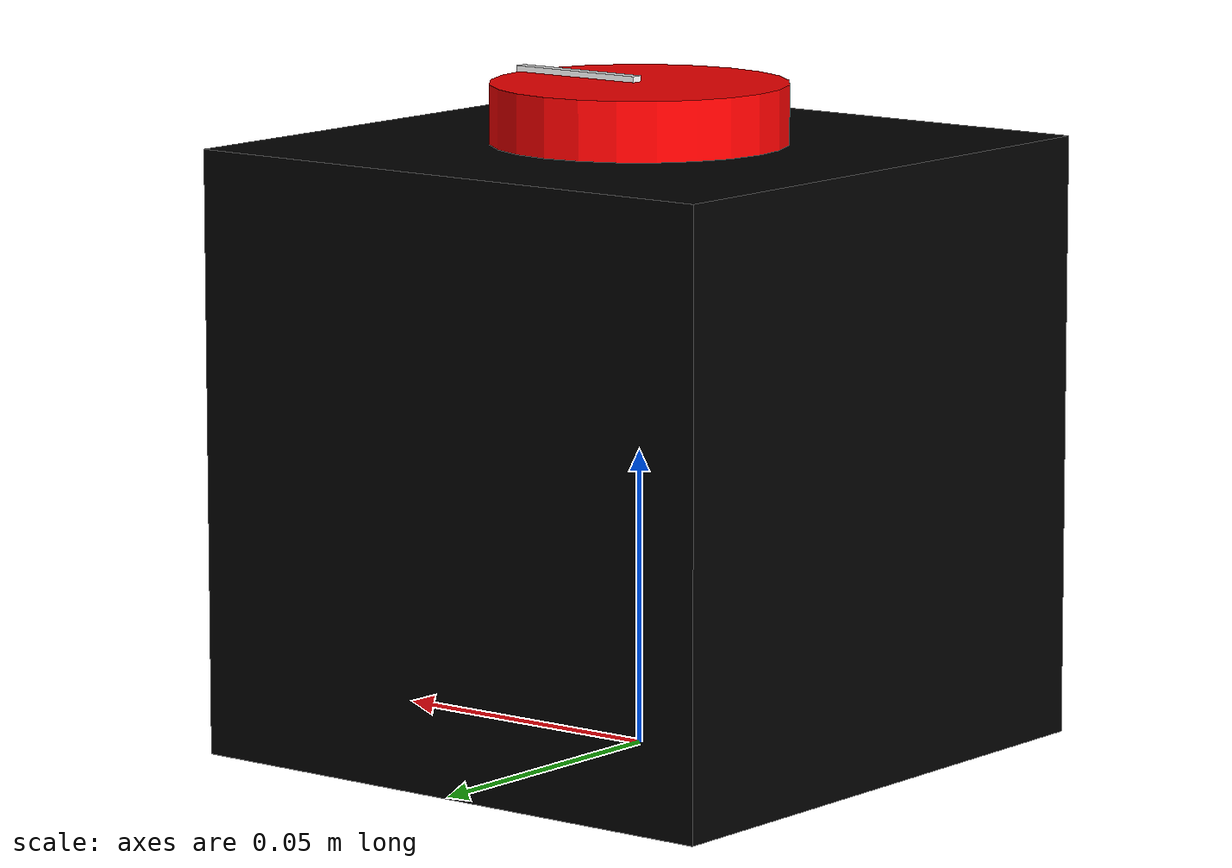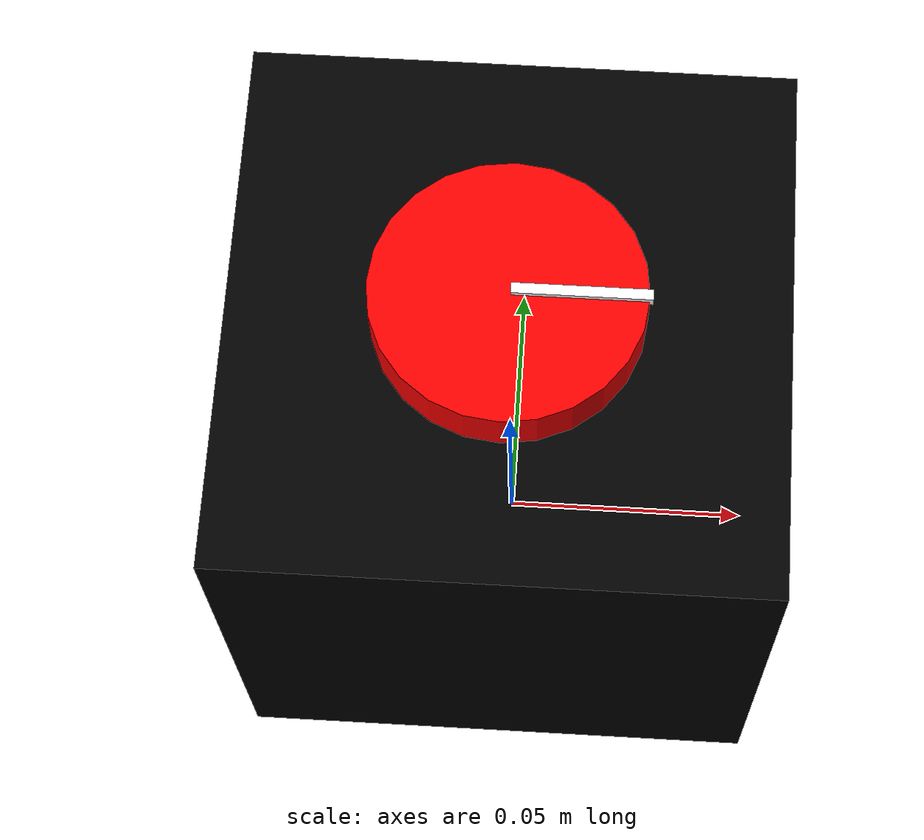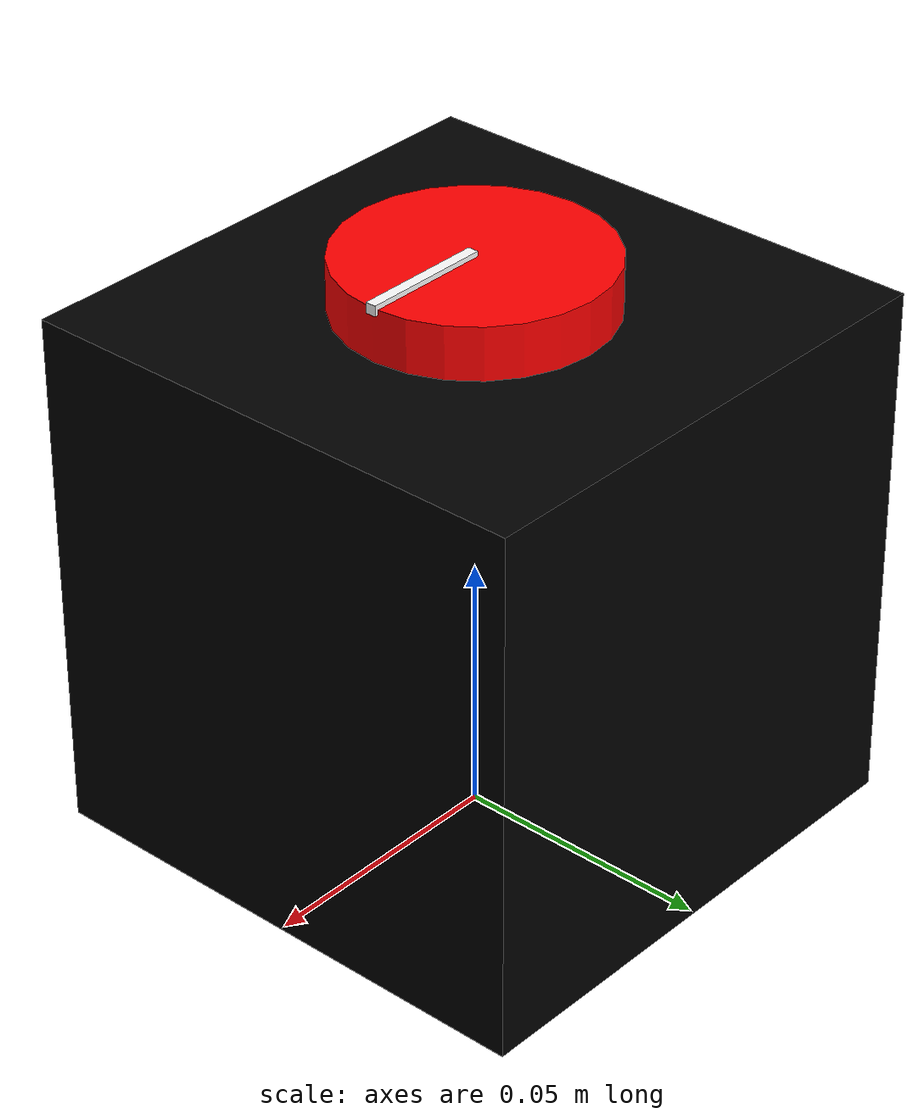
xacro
<?xml version="1.0"?>
<robot xmlns:xacro="http://www.ros.org/wiki/xacro" name="controlled_qube_scene">
  <!-- Definer argument for makroer -->
  <xacro:arg name="baud_rate" default="115200"/>
  <xacro:arg name="device" default="/dev/ttyACM0"/>
  <xacro:arg name="simulation" default="false"/>

  <!-- Inkluder makrofila frå qube_description og qube_driver -->
  <xacro:include filename="$(find qube_description)/urdf/qube.macro.xacro"/>
  <xacro:include filename="$(find qube_driver)/ros2_control/qube_driver.ros2_control.xacro"/>

  <!-- Definer world og base_link -->
  <link name="world"/>
  <link name="base_link"/>

  <!-- Joint som knytter base_link til world -->
  <joint name="world_joint" type="fixed">
    <parent link="world"/>
    <child link="base_link"/>
    <origin xyz="0 0 0" rpy="0 0 0"/>
  </joint>

  <!-- Instansier Qube-makroen -->
  <xacro:qube prefix=""/>

  <!-- Kall ROS2-control makroen med overførte argument -->
  <xacro:qube_driver_ros2_control
      name="qube_driver"
      prefix=""
      baud_rate="$(arg baud_rate)"
      device="$(arg device)"
      simulation="$(arg simulation)" />
</robot>

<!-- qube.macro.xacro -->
<robot xmlns:xacro="http://www.ros.org/wiki/xacro" name="qube_macro">
  <!-- Parametere -->
  <xacro:property name="box_size" value="0.102"/>          <!-- Størrelse på den svarte boksen -->
  <xacro:property name="disk_radius" value="0.025"/>       <!-- Radius for den røde disken -->
  <xacro:property name="disk_thickness" value="0.01"/>      <!-- Tykkelse på den røde disken -->
  <xacro:property name="indicator_length" value="0.025"/>   <!-- Lengde på den hvite indikatoren -->
  <xacro:property name="indicator_width" value="0.002"/>
  <xacro:property name="indicator_height" value="0.002"/>

  <!-- Kalkulerte størrelser -->
  <xacro:property name="half_box_size" value="0.051"/>
  <xacro:property name="disk_z" value="0.056"/>

  <!-- Makro: 'qube' med valgfritt prefix for gjenbrukbarhet -->
  <xacro:macro name="qube" params="prefix">
    <!-- Svarte boksen (stator) -->
    <link name="${prefix}stator_link">
      <visual>
        <geometry>
          <box size="${box_size} ${box_size} ${box_size}"/>
        </geometry>
        <material name="black">
          <color rgba="0 0 0 1"/>
        </material>
      </visual>
    </link>

    <!-- Røde disken (rotor) -->
    <link name="${prefix}rotor_link">
      <visual>
        <geometry>
          <cylinder radius="${disk_radius}" length="${disk_thickness}"/>
        </geometry>
        <material name="red">
          <color rgba="1 0 0 1"/>
        </material>
      </visual>
    </link>

    <!-- Hvite indikatoren -->
    <link name="${prefix}indicator_link">
      <visual>
        <geometry>
          <box size="${indicator_length} ${indicator_width} ${indicator_height}"/>
        </geometry>
        <material name="white">
          <color rgba="1 1 1 1"/>
        </material>
      </visual>
    </link>

    <!-- Fiksert joint: kobler base_link til den svarte boksen -->
    <joint name="${prefix}stator_joint" type="fixed">
      <parent link="${prefix}base_link"/>
      <child link="${prefix}stator_link"/>
      <origin xyz="0 0 ${half_box_size}" rpy="0 0 0"/>
    </joint>

    <!-- Revolute joint: disken spinner i forhold til boksen -->
    <joint name="${prefix}motor_joint" type="revolute">
      <parent link="${prefix}stator_link"/>
      <child link="${prefix}rotor_link"/>
      <origin xyz="0 0 ${disk_z}" rpy="0 0 0"/>
      <axis xyz="0 0 1"/>
      <limit lower="-3.14" upper="3.14" effort="1.0" velocity="1.0"/>
    </joint>

    <!-- Fiksert joint: fester den hvite indikatoren til disken -->
    <joint name="${prefix}indicator_joint" type="fixed">
      <parent link="${prefix}rotor_link"/>
      <child link="${prefix}indicator_link"/>
      <!-- Plasserer indikatoren til å stikke ut fra disken (langs x-aksen) -->
      <origin xyz="${disk_radius-0.012} 0 0.005" rpy="0 0 0"/>
    </joint>
  </xacro:macro>
</robot>
